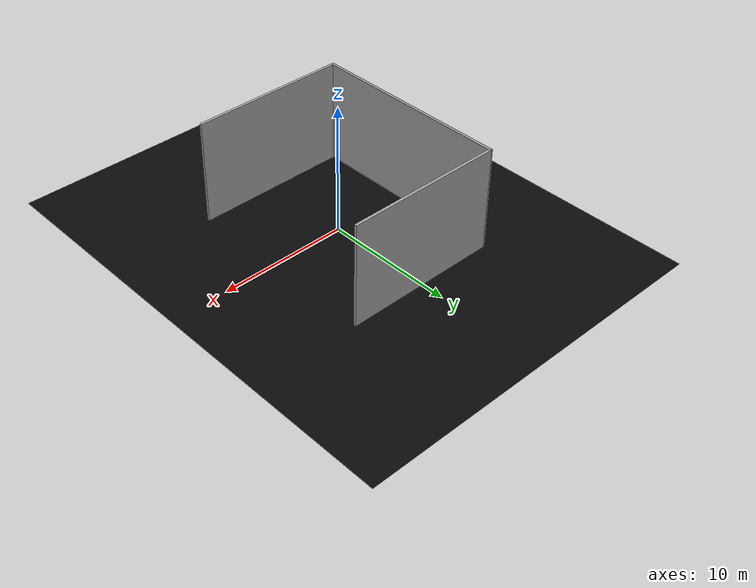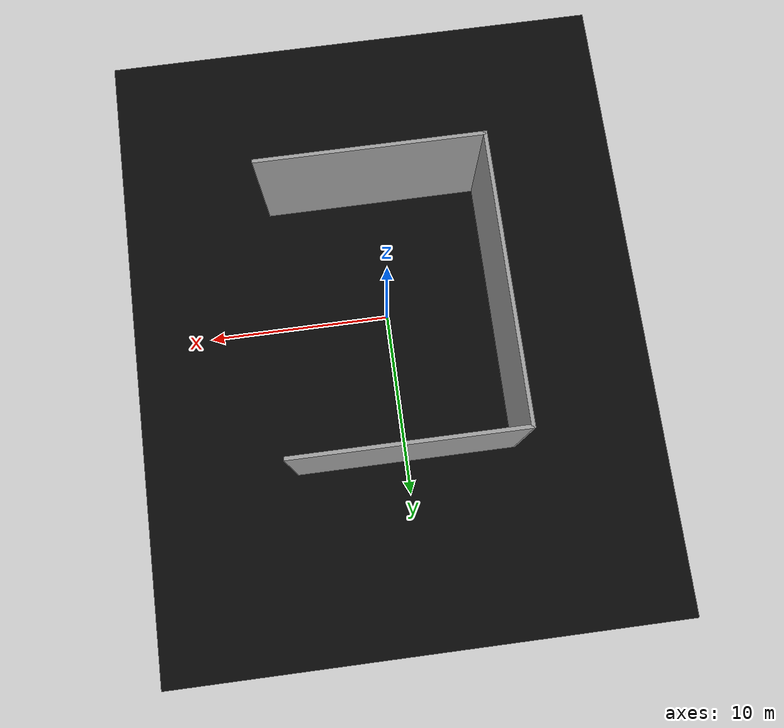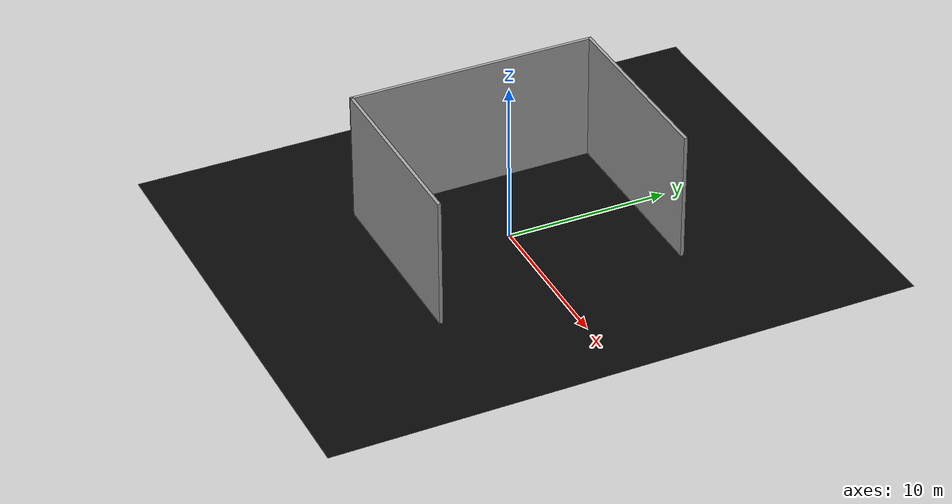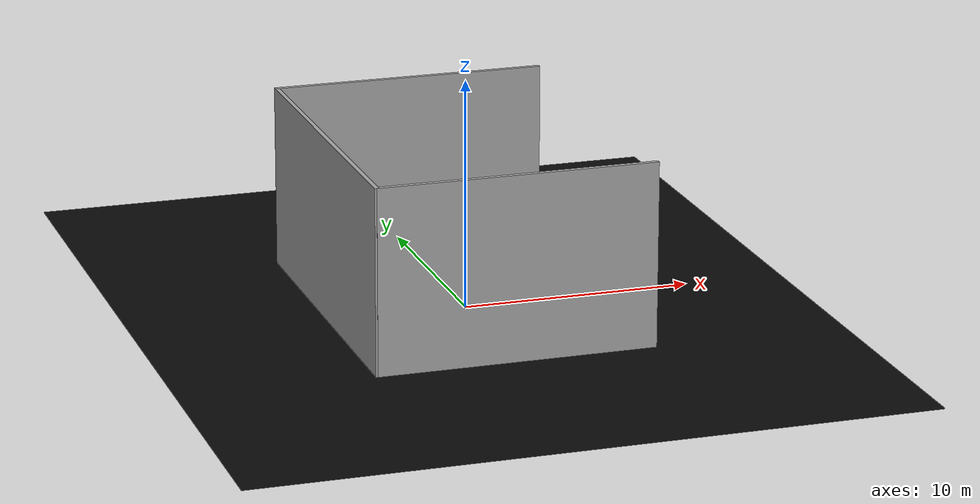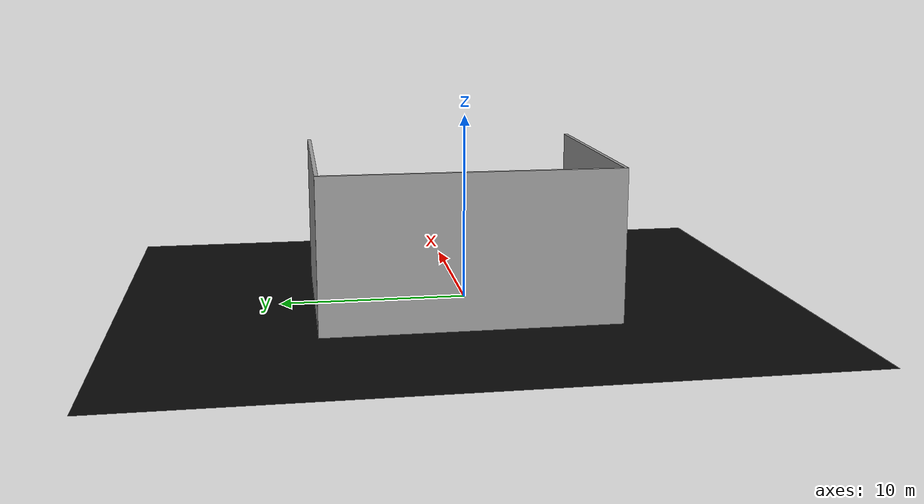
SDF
<sdf version="1.4">
  <!--Generated by blend2world.py-->
  <world name="trackinghall_empty">
    <scene>
      <ambient>0.5 0.5 0.5 1</ambient>
      <background>0.5 0.5 0.5 1</background>
      <shadows>false</shadows>
    </scene>
    <physics type="ode">
      <gravity>0 0 -9.81</gravity>
      <ode>
        <solver>
          <type>quick</type>
          <iters>1000</iters>
          <sor>1.3</sor>
        </solver>
        <constraints>
          <cfm>0.0</cfm>
          <erp>0.2</erp>
          <contact_max_correcting_vel>100.0</contact_max_correcting_vel>
          <contact_surface_layer>0.001</contact_surface_layer>
        </constraints>
      </ode>
      <real_time_update_rate>120</real_time_update_rate>
      <real_time_factor>1</real_time_factor>
      <max_step_size>0.008333</max_step_size>
    </physics>
    <light name="directional_light_1" type="directional">
      <cast_shadows>false</cast_shadows>
      <pose>0 0 30 0.1 0.1 0</pose>
      <diffuse>1.0 1.0 1.0 1</diffuse>
      <specular>.1 .1 .1 1</specular>
      <attenuation>
        <range>300</range>
      </attenuation>
      <direction>0.1 0.1 -1</direction>
    </light>

    <light name="point_light_1" type="point">
      <cast_shadows>false</cast_shadows>
      <pose>-5 -6 1.5 0 0 0</pose>
      <diffuse>0.85 0.85 0.85 1</diffuse>
      <specular>.1 .1 .1 1</specular>
      <attenuation>
        <range>20</range>
      </attenuation>
    </light>

    <light name="point_light_3" type="point">
      <cast_shadows>false</cast_shadows>
      <pose>-5 -2 1.5 0 0 0</pose>
      <diffuse>0.85 0.85 0.85 1</diffuse>
      <specular>.1 .1 .1 1</specular>
      <attenuation>
        <range>20</range>
      </attenuation>
    </light>

    <light name="point_light_4" type="point">
      <cast_shadows>false</cast_shadows>
      <pose>-5 2 1.5 0 0 0</pose>
      <diffuse>0.85 0.85 0.85 1</diffuse>
      <specular>.1 .1 .1 1</specular>
      <attenuation>
        <range>20</range>
      </attenuation>
    </light>

    <light name="point_light_6" type="point">
      <cast_shadows>false</cast_shadows>
      <pose>-5 6 1.5 0 0 0</pose>
      <diffuse>0.85 0.85 0.85 1</diffuse>
      <specular>.1 .1 .1 1</specular>
      <attenuation>
        <range>20</range>
      </attenuation>
    </light>

    <light name="point_light_14" type="point">
      <cast_shadows>false</cast_shadows>
      <pose>0 -6 1.5 0 0 0</pose>
      <diffuse>0.85 0.85 0.85 1</diffuse>
      <specular>.1 .1 .1 1</specular>
      <attenuation>
        <range>20</range>
      </attenuation>
    </light>

    <light name="point_light_15" type="point">
      <cast_shadows>false</cast_shadows>
      <pose>0 -2 1.5 0 0 0</pose>
      <diffuse>0.85 0.85 0.85 1</diffuse>
      <specular>.1 .1 .1 1</specular>
      <attenuation>
        <range>20</range>
      </attenuation>
    </light>

    <light name="point_light_16" type="point">
      <cast_shadows>false</cast_shadows>
      <pose>0 2 1.5 0 0 0</pose>
      <diffuse>0.85 0.85 0.85 1</diffuse>
      <specular>.1 .1 .1 1</specular>
      <attenuation>
        <range>20</range>
      </attenuation>
    </light>

    <light name="point_light_17" type="point">
      <cast_shadows>false</cast_shadows>
      <pose>0 6 1.5 0 0 0</pose>
      <diffuse>0.85 0.85 0.85 1</diffuse>
      <specular>.1 .1 .1 1</specular>
      <attenuation>
        <range>20</range>
      </attenuation>
    </light>

    <light name="point_light_7" type="point">
      <cast_shadows>false</cast_shadows>
      <pose>5 -6 1.5 0 0 0</pose>
      <diffuse>0.85 0.85 0.85 1</diffuse>
      <specular>.1 .1 .1 1</specular>
      <attenuation>
        <range>20</range>
      </attenuation>
    </light>

    <light name="point_light_9" type="point">
      <cast_shadows>false</cast_shadows>
      <pose>5 -2 1.5 0 0 0</pose>
      <diffuse>0.85 0.85 0.85 1</diffuse>
      <specular>.1 .1 .1 1</specular>
      <attenuation>
        <range>20</range>
      </attenuation>
    </light>

    <light name="point_light_11" type="point">
      <cast_shadows>false</cast_shadows>
      <pose>5 2 1.5 0 0 0</pose>
      <diffuse>0.85 0.85 0.85 1</diffuse>
      <specular>.1 .1 .1 1</specular>
      <attenuation>
        <range>20</range>
      </attenuation>
    </light>

    <light name="point_light_13" type="point">
      <cast_shadows>false</cast_shadows>
      <pose>5 6 1.5 0 0 0</pose>
      <diffuse>0.85 0.85 0.85 1</diffuse>
      <specular>.1 .1 .1 1</specular>
      <attenuation>
        <range>20</range>
      </attenuation>
    </light>

    <include>
      <uri>model://dark_ground_plane</uri>
    </include>

    <include>
      <uri>model://blackwall</uri>
	<name>backwall</name>
        <pose>-6.0 0.5 0 0 0 0</pose>
    </include>
	<include>
      <uri>model://blacksidewall</uri>
	<name>leftwall</name>
      <pose>0.0 -7.1 0 0 0 -1.57</pose>
    </include>
	<include>
      	<uri>model://blacksidewall</uri>
	<pose>0.0 8.1 0 0 0 1.57</pose>
	<name>rightwall</name>

    </include>

  </world>
</sdf>

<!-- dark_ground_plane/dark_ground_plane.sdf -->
<sdf version="1.4">
  <!--Generated by blend2model.py-->
  <model name="dark_ground_plane">
    <pose>0.0 0.0 0.0  0.0 0.0 0.0</pose>
    <static>true</static>
    <link name="body">
      <collision name="collision">
        <geometry>
          <mesh>
            <uri>model://dark_ground_plane/meshes/dark_ground_plane.dae</uri>
            <scale>1 1 1</scale>
          </mesh>
        </geometry>
      </collision>
      <visual name="visual">
        <geometry>
          <mesh>
            <uri>model://dark_ground_plane/meshes/dark_ground_plane.dae</uri>
            <scale>1 1 1</scale>
          </mesh>
        </geometry>
      </visual>
    </link>
  </model>
</sdf>

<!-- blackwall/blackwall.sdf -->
<sdf version="1.4">
  <!--Generated by blend2model.py-->
  <model name="blackwall">
    <pose>0.0 0.0 0.0  0.0 0.0 0.0</pose>
    <static>true</static>
    <link name="body">
      <collision name="collision">
        <geometry>
          <mesh>
            <uri>model://blackwall/meshes/blackwall.dae</uri>
            <scale>1 1 1</scale>
          </mesh>
        </geometry>
      </collision>
      <visual name="visual">
        <geometry>
          <mesh>
            <uri>model://blackwall/meshes/blackwall.dae</uri>
            <scale>1 1 1</scale>
          </mesh>
        </geometry>
      </visual>
    </link>
  </model>
</sdf>

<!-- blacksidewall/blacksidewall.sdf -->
<sdf version="1.4">
  <!--Generated by blend2model.py-->
  <model name="blacksidewall">
    <pose>0.0 0.0 0.0  0.0 0.0 -1.57</pose>
    <static>true</static>
    <link name="body">
      <collision name="collision">
        <geometry>
          <mesh>
            <uri>model://blackwall/meshes/blackwall.dae</uri>
            <scale>1 0.78 1</scale>
          </mesh>
        </geometry>
      </collision>
      <visual name="visual">
        <geometry>
          <mesh>
            <uri>model://blackwall/meshes/blackwall.dae</uri>
            <scale>1 0.78 1</scale>
          </mesh>
        </geometry>
      </visual>
    </link>
  </model>
</sdf>
